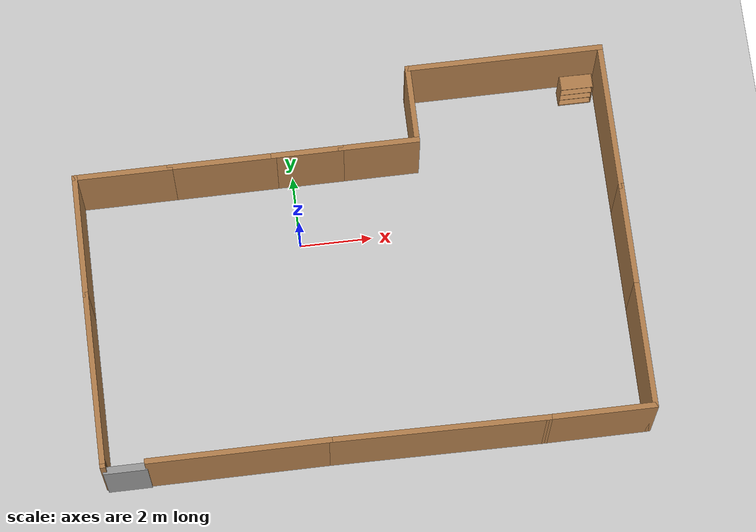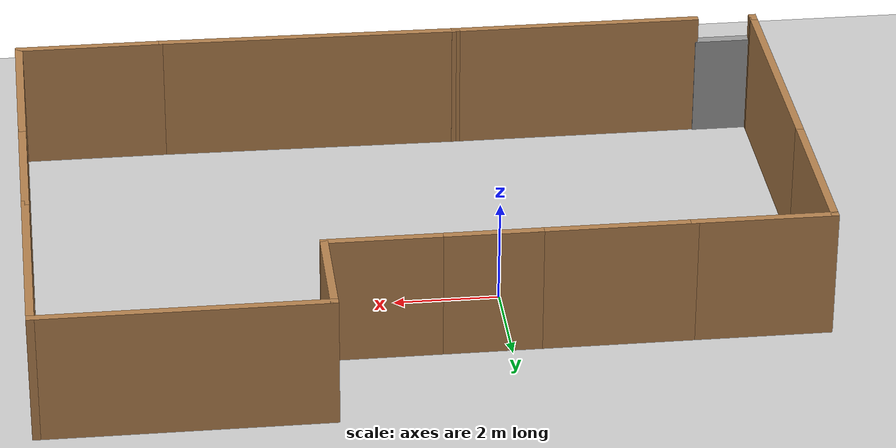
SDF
<sdf version="1.6">
 <world name="default">
  <light name="sun" type="directional">
   <pose>0 0 10 0 -0 0</pose>
   <diffuse>0.8 0.8 0.8 1</diffuse>
   <specular>0.2 0.2 0.2 1</specular>
   <attenuation>
    <range>1000</range>
    <constant>0.9</constant>
    <linear>0.01</linear>
    <quadratic>0.001</quadratic>
   </attenuation>
   <direction>-0.5 0.1 -0.9</direction>
  </light>
  <model name="ground_plane">
   <static>1</static>
   <link name="link">
    <collision name="collision">
     <geometry><plane><normal>0 0 1</normal><size>100 100</size></plane></geometry>
     <surface>
      <contact><collide_bitmask>65535</collide_bitmask></contact>
      <friction><ode><mu>100</mu><mu2>50</mu2></ode></friction>
     </surface>
    </collision>
    <visual name="visual">
     <cast_shadows>0</cast_shadows>
     <geometry><plane><normal>0 0 1</normal><size>100 100</size></plane></geometry>
     <material>
      <script><uri>file://media/materials/scripts/gazebo.material</uri><name>Gazebo/Grey</name></script>
     </material>
    </visual>
   </link>
  </model>
  <gravity>0 0 -9.8</gravity>
  <magnetic_field>6e-06 2.3e-05 -4.2e-05</magnetic_field>
  <atmosphere type="adiabatic"/>
  <physics name="default_physics" default="0" type="ode">
   <max_step_size>0.001</max_step_size>
   <real_time_factor>1</real_time_factor>
   <real_time_update_rate>1000</real_time_update_rate>
  </physics>
  <scene><ambient>0.4 0.4 0.4 1</ambient><background>0.7 0.7 0.7 1</background><shadows>1</shadows></scene>
  <audio><device>default</device></audio>
  <spherical_coordinates>
   <surface_model>EARTH_WGS84</surface_model>
   <latitude_deg>0</latitude_deg>
   <longitude_deg>0</longitude_deg>
   <elevation>0</elevation>
   <heading_deg>0</heading_deg>
  </spherical_coordinates>
  <model name="newbuilding">
   <pose>1.43673 -1.20464 0 0 -0 0</pose>
   <link name="Door_0">
    <collision name="Door_0_Collision">
     <geometry><box><size>1.18897 0.2 2</size></box></geometry>
     <pose>0 0 1 0 -0 0</pose>
    </collision>
    <visual name="Door_0_Visual">
     <pose>0 0 1 0 -0 0</pose>
     <geometry><box><size>1.18897 0.2 2</size></box></geometry>
     <material>
      <script><uri>file://media/materials/scripts/gazebo.material</uri><name>Gazebo/Grey</name></script>
     </material>
    </visual>
    <pose>-6.7976 -5.07949 0 0 -0 0</pose>
   </link>
   <link name="Wall_0">
    <collision name="Wall_0_Collision">
     <geometry><box><size>5 0.15 2.5</size></box></geometry>
     <pose>0 0 1.25 0 -0 0</pose>
    </collision>
    <visual name="Wall_0_Visual">
     <pose>0 0 1.25 0 -0 0</pose>
     <geometry><box><size>5 0.15 2.5</size></box></geometry>
     <material>
      <script><uri>file://media/materials/scripts/gazebo.material</uri><name>Gazebo/Wood</name></script>
      <ambient>1 1 1 1</ambient>
     </material>
     <meta><layer>0</layer></meta>
    </visual>
    <pose>-3.75366 -5.07347 0 0 -0 0</pose>
   </link>
   <link name="Wall_1">
    <collision name="Wall_1_Collision">
     <geometry><box><size>6.01948 0.15 2.5</size></box></geometry>
     <pose>0 0 1.25 0 -0 0</pose>
    </collision>
    <visual name="Wall_1_Visual">
     <pose>0 0 1.25 0 -0 0</pose>
     <geometry><box><size>6.01948 0.15 2.5</size></box></geometry>
     <material>
      <script><uri>file://media/materials/scripts/gazebo.material</uri><name>Gazebo/Wood</name></script>
      <ambient>1 1 1 1</ambient>
     </material>
     <meta><layer>0</layer></meta>
    </visual>
    <pose>1.59063 -5.11149 0 0 -0 -0.012956</pose>
   </link>
   <link name="Wall_10">
    <collision name="Wall_10_Collision">
     <geometry><box><size>3 0.15 2.5</size></box></geometry>
     <pose>0 0 1.25 0 -0 0</pose>
    </collision>
    <visual name="Wall_10_Visual">
     <pose>0 0 1.25 0 -0 0</pose>
     <geometry><box><size>3 0.15 2.5</size></box></geometry>
     <material>
      <script><uri>file://media/materials/scripts/gazebo.material</uri><name>Gazebo/Wood</name></script>
      <ambient>1 1 1 1</ambient>
     </material>
     <meta><layer>0</layer></meta>
    </visual>
    <pose>-3.34988 3.05048 0 0 -0 3.14159</pose>
   </link>
   <link name="Wall_11">
    <collision name="Wall_11_Collision">
     <geometry><box><size>2.75 0.15 2.5</size></box></geometry>
     <pose>0 0 1.25 0 -0 0</pose>
    </collision>
    <visual name="Wall_11_Visual">
     <pose>0 0 1.25 0 -0 0</pose>
     <geometry><box><size>2.75 0.15 2.5</size></box></geometry>
     <material>
      <script><uri>file://media/materials/scripts/gazebo.material</uri><name>Gazebo/Wood</name></script>
      <ambient>1 1 1 1</ambient>
     </material>
     <meta><layer>0</layer></meta>
    </visual>
    <pose>-6.07488 3.05048 0 0 -0 3.14159</pose>
   </link>
   <link name="Wall_12">
    <collision name="Wall_12_Collision">
     <geometry><box><size>3.5 0.15 2.5</size></box></geometry>
     <pose>0 0 1.25 0 -0 0</pose>
    </collision>
    <visual name="Wall_12_Visual">
     <pose>0 0 1.25 0 -0 0</pose>
     <geometry><box><size>3.5 0.15 2.5</size></box></geometry>
     <material>
      <script><uri>file://media/materials/scripts/gazebo.material</uri><name>Gazebo/Wood</name></script>
      <ambient>1 1 1 1</ambient>
     </material>
     <meta><layer>0</layer></meta>
    </visual>
    <pose>-7.37488 1.37548 0 0 -0 -1.5708</pose>
   </link>
   <link name="Wall_13">
    <collision name="Wall_13_Collision">
     <geometry><box><size>4.78044 0.15 2.5</size></box></geometry>
     <pose>0 0 1.25 0 -0 0</pose>
    </collision>
    <visual name="Wall_13_Visual">
     <pose>0 0 1.25 0 -0 0</pose>
     <geometry><box><size>4.78044 0.15 2.5</size></box></geometry>
     <material>
      <script><uri>file://media/materials/scripts/gazebo.material</uri><name>Gazebo/Wood</name></script>
      <ambient>1 1 1 1</ambient>
     </material>
     <meta><layer>0</layer></meta>
    </visual>
    <pose>-7.36727 -2.61473 0 0 -0 -1.56751</pose>
   </link>
   <link name="Wall_14">
    <collision name="Wall_14_Collision">
     <geometry><box><size>0.25 0.15 2.5</size></box></geometry>
     <pose>0 0 1.25 0 -0 0</pose>
    </collision>
    <visual name="Wall_14_Visual">
     <pose>0 0 1.25 0 -0 0</pose>
     <geometry><box><size>0.25 0.15 2.5</size></box></geometry>
     <material>
      <script><uri>file://media/materials/scripts/gazebo.material</uri><name>Gazebo/Wood</name></script>
      <ambient>1 1 1 1</ambient>
     </material>
     <meta><layer>0</layer></meta>
    </visual>
    <pose>-7.35967 -4.99514 0 0 -0 -1.5708</pose>
   </link>
   <link name="Wall_2">
    <collision name="Wall_2_Collision">
     <geometry><box><size>3 0.15 2.5</size></box></geometry>
     <pose>0 0 1.25 0 -0 0</pose>
    </collision>
    <visual name="Wall_2_Visual">
     <pose>0 0 1.25 0 -0 0</pose>
     <geometry><box><size>3 0.15 2.5</size></box></geometry>
     <material>
      <script><uri>file://media/materials/scripts/gazebo.material</uri><name>Gazebo/Wood</name></script>
      <ambient>1 1 1 1</ambient>
     </material>
     <meta><layer>0</layer></meta>
    </visual>
    <pose>5.95012 -5.14952 0 0 -0 0</pose>
   </link>
   <link name="Wall_3">
    <collision name="Wall_3_Collision">
     <geometry><box><size>3.5 0.15 2.5</size></box></geometry>
     <pose>0 0 1.25 0 -0 0</pose>
    </collision>
    <visual name="Wall_3_Visual">
     <pose>0 0 1.25 0 -0 0</pose>
     <geometry><box><size>3.5 0.15 2.5</size></box></geometry>
     <material>
      <script><uri>file://media/materials/scripts/gazebo.material</uri><name>Gazebo/Wood</name></script>
      <ambient>1 1 1 1</ambient>
     </material>
     <meta><layer>0</layer></meta>
    </visual>
    <pose>7.37512 -3.47452 0 0 -0 1.5708</pose>
   </link>
   <link name="Wall_4">
    <collision name="Wall_4_Collision">
     <geometry><box><size>3 0.15 2.5</size></box></geometry>
     <pose>0 0 1.25 0 -0 0</pose>
    </collision>
    <visual name="Wall_4_Visual">
     <pose>0 0 1.25 0 -0 0</pose>
     <geometry><box><size>3 0.15 2.5</size></box></geometry>
     <material>
      <script><uri>file://media/materials/scripts/gazebo.material</uri><name>Gazebo/Wood</name></script>
      <ambient>1 1 1 1</ambient>
     </material>
     <meta><layer>0</layer></meta>
    </visual>
    <pose>7.37512 -0.374517 0 0 -0 1.5708</pose>
   </link>
   <link name="Wall_5">
    <collision name="Wall_5_Collision">
     <geometry><box><size>4.25 0.15 2.5</size></box></geometry>
     <pose>0 0 1.25 0 -0 0</pose>
    </collision>
    <visual name="Wall_5_Visual">
     <pose>0 0 1.25 0 -0 0</pose>
     <geometry><box><size>4.25 0.15 2.5</size></box></geometry>
     <material>
      <script><uri>file://media/materials/scripts/gazebo.material</uri><name>Gazebo/Wood</name></script>
      <ambient>1 1 1 1</ambient>
     </material>
     <meta><layer>0</layer></meta>
    </visual>
    <pose>7.37512 3.10048 0 0 -0 1.5708</pose>
   </link>
   <link name="Wall_6">
    <collision name="Wall_6_Collision">
     <geometry><box><size>5.5 0.15 2.5</size></box></geometry>
     <pose>0 0 1.25 0 -0 0</pose>
    </collision>
    <visual name="Wall_6_Visual">
     <pose>0 0 1.25 0 -0 0</pose>
     <geometry><box><size>5.5 0.15 2.5</size></box></geometry>
     <material>
      <script><uri>file://media/materials/scripts/gazebo.material</uri><name>Gazebo/Wood</name></script>
      <ambient>1 1 1 1</ambient>
     </material>
     <meta><layer>0</layer></meta>
    </visual>
    <pose>4.70012 5.15048 0 0 -0 3.14159</pose>
   </link>
   <link name="Wall_7">
    <collision name="Wall_7_Collision">
     <geometry><box><size>2.25 0.15 2.5</size></box></geometry>
     <pose>0 0 1.25 0 -0 0</pose>
    </collision>
    <visual name="Wall_7_Visual">
     <pose>0 0 1.25 0 -0 0</pose>
     <geometry><box><size>2.25 0.15 2.5</size></box></geometry>
     <material>
      <script><uri>file://media/materials/scripts/gazebo.material</uri><name>Gazebo/Wood</name></script>
      <ambient>1 1 1 1</ambient>
     </material>
     <meta><layer>0</layer></meta>
    </visual>
    <pose>2.02512 4.10048 0 0 -0 -1.5708</pose>
   </link>
   <link name="Wall_8">
    <collision name="Wall_8_Collision">
     <geometry><box><size>2.25 0.15 2.5</size></box></geometry>
     <pose>0 0 1.25 0 -0 0</pose>
    </collision>
    <visual name="Wall_8_Visual">
     <pose>0 0 1.25 0 -0 0</pose>
     <geometry><box><size>2.25 0.15 2.5</size></box></geometry>
     <material>
      <script><uri>file://media/materials/scripts/gazebo.material</uri><name>Gazebo/Wood</name></script>
      <ambient>1 1 1 1</ambient>
     </material>
     <meta><layer>0</layer></meta>
    </visual>
    <pose>0.975123 3.05048 0 0 -0 3.14159</pose>
   </link>
   <link name="Wall_9">
    <collision name="Wall_9_Collision">
     <geometry><box><size>2 0.15 2.5</size></box></geometry>
     <pose>0 0 1.25 0 -0 0</pose>
    </collision>
    <visual name="Wall_9_Visual">
     <pose>0 0 1.25 0 -0 0</pose>
     <geometry><box><size>2 0.15 2.5</size></box></geometry>
     <material>
      <script><uri>file://media/materials/scripts/gazebo.material</uri><name>Gazebo/Wood</name></script>
      <ambient>1 1 1 1</ambient>
     </material>
     <meta><layer>0</layer></meta>
    </visual>
    <pose>-0.999877 3.05048 0 0 -0 3.14159</pose>
   </link>
   <static>1</static>
  </model>
  <model name="bookshelf">
   <static>1</static>
   <link name="link">
    <inertial><mass>1</mass></inertial>
    <collision name="back">
     <pose>0 0.005 0.6 0 -0 0</pose>
     <geometry><box><size>0.9 0.01 1.2</size></box></geometry>
    </collision>
    <visual name="visual1">
     <pose>0 0.005 0.6 0 -0 0</pose>
     <geometry><box><size>0.9 0.01 1.2</size></box></geometry>
     <material>
      <script><uri>file://media/materials/scripts/gazebo.material</uri><name>Gazebo/Wood</name></script>
     </material>
    </visual>
    <collision name="left_side">
     <pose>0.45 -0.195 0.6 0 -0 0</pose>
     <geometry><box><size>0.02 0.4 1.2</size></box></geometry>
    </collision>
    <visual name="visual2">
     <pose>0.45 -0.195 0.6 0 -0 0</pose>
     <geometry><box><size>0.02 0.4 1.2</size></box></geometry>
     <material>
      <script><uri>file://media/materials/scripts/gazebo.material</uri><name>Gazebo/Wood</name></script>
     </material>
    </visual>
    <collision name="right_side">
     <pose>-0.45 -0.195 0.6 0 -0 0</pose>
     <geometry><box><size>0.02 0.4 1.2</size></box></geometry>
    </collision>
    <visual name="visual3">
     <pose>-0.45 -0.195 0.6 0 -0 0</pose>
     <geometry><box><size>0.02 0.4 1.2</size></box></geometry>
     <material>
      <script><uri>file://media/materials/scripts/gazebo.material</uri><name>Gazebo/Wood</name></script>
     </material>
    </visual>
    <collision name="bottom">
     <pose>0 -0.195 0.03 0 -0 0</pose>
     <geometry><box><size>0.88 0.4 0.06</size></box></geometry>
    </collision>
    <visual name="visual4">
     <pose>0 -0.195 0.03 0 -0 0</pose>
     <geometry><box><size>0.88 0.4 0.06</size></box></geometry>
     <material>
      <script><uri>file://media/materials/scripts/gazebo.material</uri><name>Gazebo/Wood</name></script>
     </material>
    </visual>
    <collision name="top">
     <pose>0 -0.195 1.19 0 -0 0</pose>
     <geometry><box><size>0.88 0.4 0.02</size></box></geometry>
    </collision>
    <visual name="visual5">
     <pose>0 -0.195 1.19 0 -0 0</pose>
     <geometry><box><size>0.88 0.4 0.02</size></box></geometry>
     <material>
      <script><uri>file://media/materials/scripts/gazebo.material</uri><name>Gazebo/Wood</name></script>
     </material>
    </visual>
    <collision name="low_shelf">
     <pose>0 -0.195 0.43 0 -0 0</pose>
     <geometry><box><size>0.88 0.4 0.02</size></box></geometry>
    </collision>
    <visual name="visual6">
     <pose>0 -0.195 0.43 0 -0 0</pose>
     <geometry><box><size>0.88 0.4 0.02</size></box></geometry>
     <material>
      <script><uri>file://media/materials/scripts/gazebo.material</uri><name>Gazebo/Wood</name></script>
     </material>
    </visual>
    <collision name="high_shelf">
     <pose>0 -0.195 0.8 0 -0 0</pose>
     <geometry><box><size>0.88 0.4 0.02</size></box></geometry>
    </collision>
    <visual name="visual7">
     <pose>0 -0.195 0.8 0 -0 0</pose>
     <geometry><box><size>0.88 0.4 0.02</size></box></geometry>
     <material>
      <script><uri>file://media/materials/scripts/gazebo.material</uri><name>Gazebo/Wood</name></script>
     </material>
    </visual>
   </link>
   <pose>8.17874 3.69383 0 0 -0 0</pose>
  </model>
 </world>
</sdf>
